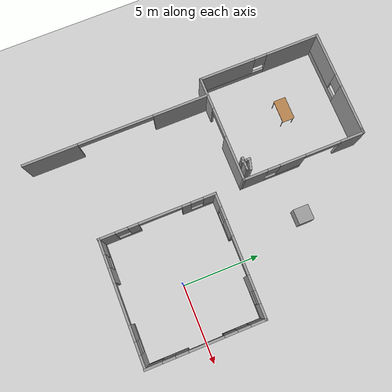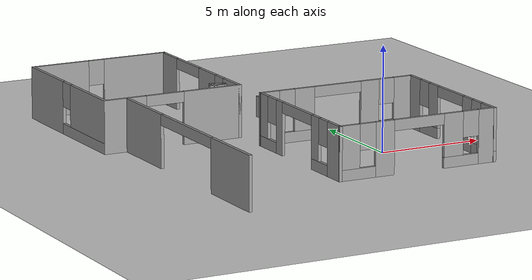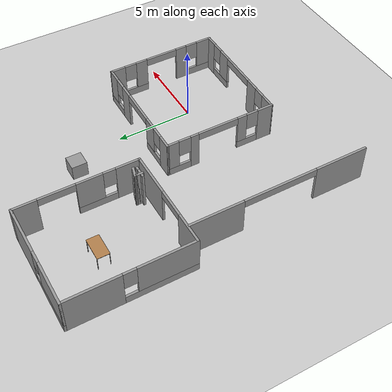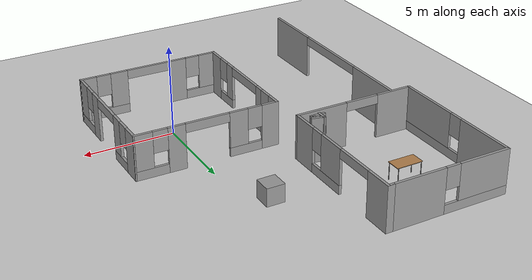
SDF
<sdf version="1.6">
 <world name="default">
  <model name="ground_plane">
   <static>1</static>
   <link name="link">
    <collision name="collision">
     <geometry><plane><normal>0 0 1</normal><size>100 100</size></plane></geometry>
     <surface>
      <contact><collide_bitmask>65535</collide_bitmask></contact>
      <friction><ode><mu>100</mu><mu2>50</mu2></ode></friction>
     </surface>
    </collision>
    <visual name="visual">
     <cast_shadows>0</cast_shadows>
     <geometry><plane><normal>0 0 1</normal><size>100 100</size></plane></geometry>
     <material>
      <script><uri>file://media/materials/scripts/gazebo.material</uri><name>Gazebo/Grey</name></script>
     </material>
    </visual>
   </link>
  </model>
  <model name="center">
   <pose>-0.31833 0.012222 0 0 -0 0</pose>
   <link name="Wall_0">
    <pose>-3.925 0.043311 0 0 -0 1.5708</pose>
    <visual name="Wall_0_Visual_0">
     <pose>-3.19646 0 1.25 0 -0 0</pose>
     <geometry><box><size>1.10708 0.15 2.5</size></box></geometry>
     <material>
      <script><uri>file://media/materials/scripts/gazebo.material</uri><name>Gazebo/Grey</name></script>
      <ambient>1 1 1 1</ambient>
     </material>
     <meta><layer>0</layer></meta>
    </visual>
    <collision name="Wall_0_Collision_0">
     <geometry><box><size>1.10708 0.15 2.5</size></box></geometry>
     <pose>-3.19646 0 1.25 0 -0 0</pose>
    </collision>
    <visual name="Wall_0_Visual_1">
     <pose>1.84852 0 1.25 0 -0 0</pose>
     <geometry><box><size>0.566695 0.15 2.5</size></box></geometry>
     <material>
      <script><uri>file://media/materials/scripts/gazebo.material</uri><name>Gazebo/Grey</name></script>
      <ambient>1 1 1 1</ambient>
     </material>
     <meta><layer>0</layer></meta>
    </visual>
    <collision name="Wall_0_Collision_1">
     <geometry><box><size>0.566695 0.15 2.5</size></box></geometry>
     <pose>1.84852 0 1.25 0 -0 0</pose>
    </collision>
    <visual name="Wall_0_Visual_2">
     <pose>-1.91585 0 0.25 0 -0 0</pose>
     <geometry><box><size>1.45415 0.15 0.5</size></box></geometry>
     <material>
      <script><uri>file://media/materials/scripts/gazebo.material</uri><name>Gazebo/Grey</name></script>
      <ambient>1 1 1 1</ambient>
     </material>
     <meta><layer>0</layer></meta>
    </visual>
    <collision name="Wall_0_Collision_2">
     <geometry><box><size>1.45415 0.15 0.5</size></box></geometry>
     <pose>-1.91585 0 0.25 0 -0 0</pose>
    </collision>
    <visual name="Wall_0_Visual_3">
     <pose>2.94093 0 0.25 0 -0 0</pose>
     <geometry><box><size>1.61813 0.15 0.5</size></box></geometry>
     <material>
      <script><uri>file://media/materials/scripts/gazebo.material</uri><name>Gazebo/Grey</name></script>
      <ambient>1 1 1 1</ambient>
     </material>
     <meta><layer>0</layer></meta>
    </visual>
    <collision name="Wall_0_Collision_3">
     <geometry><box><size>1.61813 0.15 0.5</size></box></geometry>
     <pose>2.94093 0 0.25 0 -0 0</pose>
    </collision>
    <visual name="Wall_0_Visual_4">
     <pose>-1.51585 0 1.5 0 -0 0</pose>
     <geometry><box><size>0.654145 0.15 2</size></box></geometry>
     <material>
      <script><uri>file://media/materials/scripts/gazebo.material</uri><name>Gazebo/Grey</name></script>
      <ambient>1 1 1 1</ambient>
     </material>
     <meta><layer>0</layer></meta>
    </visual>
    <collision name="Wall_0_Collision_4">
     <geometry><box><size>0.654145 0.15 2</size></box></geometry>
     <pose>-1.51585 0 1.5 0 -0 0</pose>
    </collision>
    <visual name="Wall_0_Visual_5">
     <pose>-1.51585 0 1.5 0 -0 0</pose>
     <geometry><box><size>0.654145 0.15 2</size></box></geometry>
     <material>
      <script><uri>file://media/materials/scripts/gazebo.material</uri><name>Gazebo/Grey</name></script>
      <ambient>1 1 1 1</ambient>
     </material>
     <meta><layer>0</layer></meta>
    </visual>
    <collision name="Wall_0_Collision_5">
     <geometry><box><size>0.654145 0.15 2</size></box></geometry>
     <pose>-1.51585 0 1.5 0 -0 0</pose>
    </collision>
    <visual name="Wall_0_Visual_6">
     <pose>3.34093 0 1.5 0 -0 0</pose>
     <geometry><box><size>0.818134 0.15 2</size></box></geometry>
     <material>
      <script><uri>file://media/materials/scripts/gazebo.material</uri><name>Gazebo/Grey</name></script>
      <ambient>1 1 1 1</ambient>
     </material>
     <meta><layer>0</layer></meta>
    </visual>
    <collision name="Wall_0_Collision_6">
     <geometry><box><size>0.818134 0.15 2</size></box></geometry>
     <pose>3.34093 0 1.5 0 -0 0</pose>
    </collision>
    <visual name="Wall_0_Visual_7">
     <pose>-2.24292 0 1.9 0 -0 0</pose>
     <geometry><box><size>0.8 0.15 1.2</size></box></geometry>
     <material>
      <script><uri>file://media/materials/scripts/gazebo.material</uri><name>Gazebo/Grey</name></script>
      <ambient>1 1 1 1</ambient>
     </material>
     <meta><layer>0</layer></meta>
    </visual>
    <collision name="Wall_0_Collision_7">
     <geometry><box><size>0.8 0.15 1.2</size></box></geometry>
     <pose>-2.24292 0 1.9 0 -0 0</pose>
    </collision>
    <visual name="Wall_0_Visual_8">
     <pose>2.53187 0 1.9 0 -0 0</pose>
     <geometry><box><size>0.8 0.15 1.2</size></box></geometry>
     <material>
      <script><uri>file://media/materials/scripts/gazebo.material</uri><name>Gazebo/Grey</name></script>
      <ambient>1 1 1 1</ambient>
     </material>
     <meta><layer>0</layer></meta>
    </visual>
    <collision name="Wall_0_Collision_8">
     <geometry><box><size>0.8 0.15 1.2</size></box></geometry>
     <pose>2.53187 0 1.9 0 -0 0</pose>
    </collision>
    <visual name="Wall_0_Visual_9">
     <pose>0.188198 0 2.25 0 -0 0</pose>
     <geometry><box><size>2.75395 0.15 0.5</size></box></geometry>
     <material>
      <script><uri>file://media/materials/scripts/gazebo.material</uri><name>Gazebo/Grey</name></script>
      <ambient>1 1 1 1</ambient>
     </material>
     <meta><layer>0</layer></meta>
    </visual>
    <collision name="Wall_0_Collision_9">
     <geometry><box><size>2.75395 0.15 0.5</size></box></geometry>
     <pose>0.188198 0 2.25 0 -0 0</pose>
    </collision>
    <visual name="Wall_0_Visual_10">
     <pose>0.188198 0 2.25 0 -0 0</pose>
     <geometry><box><size>2.75395 0.15 0.5</size></box></geometry>
     <material>
      <script><uri>file://media/materials/scripts/gazebo.material</uri><name>Gazebo/Grey</name></script>
      <ambient>1 1 1 1</ambient>
     </material>
     <meta><layer>0</layer></meta>
    </visual>
    <collision name="Wall_0_Collision_10">
     <geometry><box><size>2.75395 0.15 0.5</size></box></geometry>
     <pose>0.188198 0 2.25 0 -0 0</pose>
    </collision>
   </link>
   <link name="Wall_1">
    <pose>0 3.69208 0 0 -0 -0.01114</pose>
    <visual name="Wall_1_Visual_0">
     <pose>-3.51677 0 1.25 0 -0 0</pose>
     <geometry><box><size>0.966478 0.15 2.5</size></box></geometry>
     <material>
      <script><uri>file://media/materials/scripts/gazebo.material</uri><name>Gazebo/Grey</name></script>
      <ambient>1 1 1 1</ambient>
     </material>
     <meta><layer>0</layer></meta>
    </visual>
    <collision name="Wall_1_Collision_0">
     <geometry><box><size>0.966478 0.15 2.5</size></box></geometry>
     <pose>-3.51677 0 1.25 0 -0 0</pose>
    </collision>
    <visual name="Wall_1_Visual_1">
     <pose>1.70109 0 1.25 0 -0 0</pose>
     <geometry><box><size>0.951621 0.15 2.5</size></box></geometry>
     <material>
      <script><uri>file://media/materials/scripts/gazebo.material</uri><name>Gazebo/Grey</name></script>
      <ambient>1 1 1 1</ambient>
     </material>
     <meta><layer>0</layer></meta>
    </visual>
    <collision name="Wall_1_Collision_1">
     <geometry><box><size>0.951621 0.15 2.5</size></box></geometry>
     <pose>1.70109 0 1.25 0 -0 0</pose>
    </collision>
    <visual name="Wall_1_Visual_2">
     <pose>-2.11739 0 0.25 0 -0 0</pose>
     <geometry><box><size>1.8323 0.15 0.5</size></box></geometry>
     <material>
      <script><uri>file://media/materials/scripts/gazebo.material</uri><name>Gazebo/Grey</name></script>
      <ambient>1 1 1 1</ambient>
     </material>
     <meta><layer>0</layer></meta>
    </visual>
    <collision name="Wall_1_Collision_2">
     <geometry><box><size>1.8323 0.15 0.5</size></box></geometry>
     <pose>-2.11739 0 0.25 0 -0 0</pose>
    </collision>
    <visual name="Wall_1_Visual_3">
     <pose>3.08846 0 0.25 0 -0 0</pose>
     <geometry><box><size>1.8231 0.15 0.5</size></box></geometry>
     <material>
      <script><uri>file://media/materials/scripts/gazebo.material</uri><name>Gazebo/Grey</name></script>
      <ambient>1 1 1 1</ambient>
     </material>
     <meta><layer>0</layer></meta>
    </visual>
    <collision name="Wall_1_Collision_3">
     <geometry><box><size>1.8231 0.15 0.5</size></box></geometry>
     <pose>3.08846 0 0.25 0 -0 0</pose>
    </collision>
    <visual name="Wall_1_Visual_4">
     <pose>-1.71738 0 1.5 0 -0 0</pose>
     <geometry><box><size>1.03229 0.15 2</size></box></geometry>
     <material>
      <script><uri>file://media/materials/scripts/gazebo.material</uri><name>Gazebo/Grey</name></script>
      <ambient>1 1 1 1</ambient>
     </material>
     <meta><layer>0</layer></meta>
    </visual>
    <collision name="Wall_1_Collision_4">
     <geometry><box><size>1.03229 0.15 2</size></box></geometry>
     <pose>-1.71738 0 1.5 0 -0 0</pose>
    </collision>
    <visual name="Wall_1_Visual_5">
     <pose>-1.71738 0 1.5 0 -0 0</pose>
     <geometry><box><size>1.03229 0.15 2</size></box></geometry>
     <material>
      <script><uri>file://media/materials/scripts/gazebo.material</uri><name>Gazebo/Grey</name></script>
      <ambient>1 1 1 1</ambient>
     </material>
     <meta><layer>0</layer></meta>
    </visual>
    <collision name="Wall_1_Collision_5">
     <geometry><box><size>1.03229 0.15 2</size></box></geometry>
     <pose>-1.71738 0 1.5 0 -0 0</pose>
    </collision>
    <visual name="Wall_1_Visual_6">
     <pose>3.48846 0 1.5 0 -0 0</pose>
     <geometry><box><size>1.0231 0.15 2</size></box></geometry>
     <material>
      <script><uri>file://media/materials/scripts/gazebo.material</uri><name>Gazebo/Grey</name></script>
      <ambient>1 1 1 1</ambient>
     </material>
     <meta><layer>0</layer></meta>
    </visual>
    <collision name="Wall_1_Collision_6">
     <geometry><box><size>1.0231 0.15 2</size></box></geometry>
     <pose>3.48846 0 1.5 0 -0 0</pose>
    </collision>
    <visual name="Wall_1_Visual_7">
     <pose>-2.63353 0 1.9 0 -0 0</pose>
     <geometry><box><size>0.8 0.15 1.2</size></box></geometry>
     <material>
      <script><uri>file://media/materials/scripts/gazebo.material</uri><name>Gazebo/Grey</name></script>
      <ambient>1 1 1 1</ambient>
     </material>
     <meta><layer>0</layer></meta>
    </visual>
    <collision name="Wall_1_Collision_7">
     <geometry><box><size>0.8 0.15 1.2</size></box></geometry>
     <pose>-2.63353 0 1.9 0 -0 0</pose>
    </collision>
    <visual name="Wall_1_Visual_8">
     <pose>2.5769 0 1.9 0 -0 0</pose>
     <geometry><box><size>0.8 0.15 1.2</size></box></geometry>
     <material>
      <script><uri>file://media/materials/scripts/gazebo.material</uri><name>Gazebo/Grey</name></script>
      <ambient>1 1 1 1</ambient>
     </material>
     <meta><layer>0</layer></meta>
    </visual>
    <collision name="Wall_1_Collision_8">
     <geometry><box><size>0.8 0.15 1.2</size></box></geometry>
     <pose>2.5769 0 1.9 0 -0 0</pose>
    </collision>
    <visual name="Wall_1_Visual_9">
     <pose>0.012023 0 2.25 0 -0 0</pose>
     <geometry><box><size>2.42652 0.15 0.5</size></box></geometry>
     <material>
      <script><uri>file://media/materials/scripts/gazebo.material</uri><name>Gazebo/Grey</name></script>
      <ambient>1 1 1 1</ambient>
     </material>
     <meta><layer>0</layer></meta>
    </visual>
    <collision name="Wall_1_Collision_9">
     <geometry><box><size>2.42652 0.15 0.5</size></box></geometry>
     <pose>0.012023 0 2.25 0 -0 0</pose>
    </collision>
    <visual name="Wall_1_Visual_10">
     <pose>0.012023 0 2.25 0 -0 0</pose>
     <geometry><box><size>2.42652 0.15 0.5</size></box></geometry>
     <material>
      <script><uri>file://media/materials/scripts/gazebo.material</uri><name>Gazebo/Grey</name></script>
      <ambient>1 1 1 1</ambient>
     </material>
     <meta><layer>0</layer></meta>
    </visual>
    <collision name="Wall_1_Collision_10">
     <geometry><box><size>2.42652 0.15 0.5</size></box></geometry>
     <pose>0.012023 0 2.25 0 -0 0</pose>
    </collision>
   </link>
   <link name="Wall_2">
    <pose>3.925 -0.044139 0 0 -0 -1.5708</pose>
    <visual name="Wall_2_Visual_0">
     <pose>-3.25348 0 1.25 0 -0 0</pose>
     <geometry><box><size>1.02801 0.15 2.5</size></box></geometry>
     <material>
      <script><uri>file://media/materials/scripts/gazebo.material</uri><name>Gazebo/Grey</name></script>
      <ambient>1 1 1 1</ambient>
     </material>
     <meta><layer>0</layer></meta>
    </visual>
    <collision name="Wall_2_Collision_0">
     <geometry><box><size>1.02801 0.15 2.5</size></box></geometry>
     <pose>-3.25348 0 1.25 0 -0 0</pose>
    </collision>
    <visual name="Wall_2_Visual_1">
     <pose>1.45026 0 1.25 0 -0 0</pose>
     <geometry><box><size>0.785321 0.15 2.5</size></box></geometry>
     <material>
      <script><uri>file://media/materials/scripts/gazebo.material</uri><name>Gazebo/Grey</name></script>
      <ambient>1 1 1 1</ambient>
     </material>
     <meta><layer>0</layer></meta>
    </visual>
    <collision name="Wall_2_Collision_1">
     <geometry><box><size>0.785321 0.15 2.5</size></box></geometry>
     <pose>1.45026 0 1.25 0 -0 0</pose>
    </collision>
    <visual name="Wall_2_Visual_2">
     <pose>-1.93807 0 0.25 0 -0 0</pose>
     <geometry><box><size>1.60281 0.15 0.5</size></box></geometry>
     <material>
      <script><uri>file://media/materials/scripts/gazebo.material</uri><name>Gazebo/Grey</name></script>
      <ambient>1 1 1 1</ambient>
     </material>
     <meta><layer>0</layer></meta>
    </visual>
    <collision name="Wall_2_Collision_2">
     <geometry><box><size>1.60281 0.15 0.5</size></box></geometry>
     <pose>-1.93807 0 0.25 0 -0 0</pose>
    </collision>
    <visual name="Wall_2_Visual_3">
     <pose>2.80521 0 0.25 0 -0 0</pose>
     <geometry><box><size>1.92457 0.15 0.5</size></box></geometry>
     <material>
      <script><uri>file://media/materials/scripts/gazebo.material</uri><name>Gazebo/Grey</name></script>
      <ambient>1 1 1 1</ambient>
     </material>
     <meta><layer>0</layer></meta>
    </visual>
    <collision name="Wall_2_Collision_3">
     <geometry><box><size>1.92457 0.15 0.5</size></box></geometry>
     <pose>2.80521 0 0.25 0 -0 0</pose>
    </collision>
    <visual name="Wall_2_Visual_4">
     <pose>-1.53807 0 1.5 0 -0 0</pose>
     <geometry><box><size>0.802811 0.15 2</size></box></geometry>
     <material>
      <script><uri>file://media/materials/scripts/gazebo.material</uri><name>Gazebo/Grey</name></script>
      <ambient>1 1 1 1</ambient>
     </material>
     <meta><layer>0</layer></meta>
    </visual>
    <collision name="Wall_2_Collision_4">
     <geometry><box><size>0.802811 0.15 2</size></box></geometry>
     <pose>-1.53807 0 1.5 0 -0 0</pose>
    </collision>
    <visual name="Wall_2_Visual_5">
     <pose>-1.53807 0 1.5 0 -0 0</pose>
     <geometry><box><size>0.802811 0.15 2</size></box></geometry>
     <material>
      <script><uri>file://media/materials/scripts/gazebo.material</uri><name>Gazebo/Grey</name></script>
      <ambient>1 1 1 1</ambient>
     </material>
     <meta><layer>0</layer></meta>
    </visual>
    <collision name="Wall_2_Collision_5">
     <geometry><box><size>0.802811 0.15 2</size></box></geometry>
     <pose>-1.53807 0 1.5 0 -0 0</pose>
    </collision>
    <visual name="Wall_2_Visual_6">
     <pose>3.20521 0 1.5 0 -0 0</pose>
     <geometry><box><size>1.12457 0.15 2</size></box></geometry>
     <material>
      <script><uri>file://media/materials/scripts/gazebo.material</uri><name>Gazebo/Grey</name></script>
      <ambient>1 1 1 1</ambient>
     </material>
     <meta><layer>0</layer></meta>
    </visual>
    <collision name="Wall_2_Collision_6">
     <geometry><box><size>1.12457 0.15 2</size></box></geometry>
     <pose>3.20521 0 1.5 0 -0 0</pose>
    </collision>
    <visual name="Wall_2_Visual_7">
     <pose>-2.33948 0 1.9 0 -0 0</pose>
     <geometry><box><size>0.8 0.15 1.2</size></box></geometry>
     <material>
      <script><uri>file://media/materials/scripts/gazebo.material</uri><name>Gazebo/Grey</name></script>
      <ambient>1 1 1 1</ambient>
     </material>
     <meta><layer>0</layer></meta>
    </visual>
    <collision name="Wall_2_Collision_7">
     <geometry><box><size>0.8 0.15 1.2</size></box></geometry>
     <pose>-2.33948 0 1.9 0 -0 0</pose>
    </collision>
    <visual name="Wall_2_Visual_8">
     <pose>2.24292 0 1.9 0 -0 0</pose>
     <geometry><box><size>0.8 0.15 1.2</size></box></geometry>
     <material>
      <script><uri>file://media/materials/scripts/gazebo.material</uri><name>Gazebo/Grey</name></script>
      <ambient>1 1 1 1</ambient>
     </material>
     <meta><layer>0</layer></meta>
    </visual>
    <collision name="Wall_2_Collision_8">
     <geometry><box><size>0.8 0.15 1.2</size></box></geometry>
     <pose>2.24292 0 1.9 0 -0 0</pose>
    </collision>
    <visual name="Wall_2_Visual_9">
     <pose>-0.039532 0 2.25 0 -0 0</pose>
     <geometry><box><size>2.19427 0.15 0.5</size></box></geometry>
     <material>
      <script><uri>file://media/materials/scripts/gazebo.material</uri><name>Gazebo/Grey</name></script>
      <ambient>1 1 1 1</ambient>
     </material>
     <meta><layer>0</layer></meta>
    </visual>
    <collision name="Wall_2_Collision_9">
     <geometry><box><size>2.19427 0.15 0.5</size></box></geometry>
     <pose>-0.039532 0 2.25 0 -0 0</pose>
    </collision>
    <visual name="Wall_2_Visual_10">
     <pose>-0.039532 0 2.25 0 -0 0</pose>
     <geometry><box><size>2.19427 0.15 0.5</size></box></geometry>
     <material>
      <script><uri>file://media/materials/scripts/gazebo.material</uri><name>Gazebo/Grey</name></script>
      <ambient>1 1 1 1</ambient>
     </material>
     <meta><layer>0</layer></meta>
    </visual>
    <collision name="Wall_2_Collision_10">
     <geometry><box><size>2.19427 0.15 0.5</size></box></geometry>
     <pose>-0.039532 0 2.25 0 -0 0</pose>
    </collision>
   </link>
   <link name="Wall_3">
    <pose>0 -3.66667 0 0 -0 3.12823</pose>
    <visual name="Wall_3_Visual_0">
     <pose>-3.54389 0 1.25 0 -0 0</pose>
     <geometry><box><size>0.912232 0.15 2.5</size></box></geometry>
     <material>
      <script><uri>file://media/materials/scripts/gazebo.material</uri><name>Gazebo/Grey</name></script>
      <ambient>1 1 1 1</ambient>
     </material>
     <meta><layer>0</layer></meta>
    </visual>
    <collision name="Wall_3_Collision_0">
     <geometry><box><size>0.912232 0.15 2.5</size></box></geometry>
     <pose>-3.54389 0 1.25 0 -0 0</pose>
    </collision>
    <visual name="Wall_3_Visual_1">
     <pose>1.68912 0 1.25 0 -0 0</pose>
     <geometry><box><size>0.942104 0.15 2.5</size></box></geometry>
     <material>
      <script><uri>file://media/materials/scripts/gazebo.material</uri><name>Gazebo/Grey</name></script>
      <ambient>1 1 1 1</ambient>
     </material>
     <meta><layer>0</layer></meta>
    </visual>
    <collision name="Wall_3_Collision_1">
     <geometry><box><size>0.942104 0.15 2.5</size></box></geometry>
     <pose>1.68912 0 1.25 0 -0 0</pose>
    </collision>
    <visual name="Wall_3_Visual_2">
     <pose>-2.1983 0 0.25 0 -0 0</pose>
     <geometry><box><size>1.77895 0.15 0.5</size></box></geometry>
     <material>
      <script><uri>file://media/materials/scripts/gazebo.material</uri><name>Gazebo/Grey</name></script>
      <ambient>1 1 1 1</ambient>
     </material>
     <meta><layer>0</layer></meta>
    </visual>
    <collision name="Wall_3_Collision_2">
     <geometry><box><size>1.77895 0.15 0.5</size></box></geometry>
     <pose>-2.1983 0 0.25 0 -0 0</pose>
    </collision>
    <visual name="Wall_3_Visual_3">
     <pose>3.08009 0 0.25 0 -0 0</pose>
     <geometry><box><size>1.83984 0.15 0.5</size></box></geometry>
     <material>
      <script><uri>file://media/materials/scripts/gazebo.material</uri><name>Gazebo/Grey</name></script>
      <ambient>1 1 1 1</ambient>
     </material>
     <meta><layer>0</layer></meta>
    </visual>
    <collision name="Wall_3_Collision_3">
     <geometry><box><size>1.83984 0.15 0.5</size></box></geometry>
     <pose>3.08009 0 0.25 0 -0 0</pose>
    </collision>
    <visual name="Wall_3_Visual_4">
     <pose>-1.7983 0 1.5 0 -0 0</pose>
     <geometry><box><size>0.978951 0.15 2</size></box></geometry>
     <material>
      <script><uri>file://media/materials/scripts/gazebo.material</uri><name>Gazebo/Grey</name></script>
      <ambient>1 1 1 1</ambient>
     </material>
     <meta><layer>0</layer></meta>
    </visual>
    <collision name="Wall_3_Collision_4">
     <geometry><box><size>0.978951 0.15 2</size></box></geometry>
     <pose>-1.7983 0 1.5 0 -0 0</pose>
    </collision>
    <visual name="Wall_3_Visual_5">
     <pose>-1.7983 0 1.5 0 -0 0</pose>
     <geometry><box><size>0.978951 0.15 2</size></box></geometry>
     <material>
      <script><uri>file://media/materials/scripts/gazebo.material</uri><name>Gazebo/Grey</name></script>
      <ambient>1 1 1 1</ambient>
     </material>
     <meta><layer>0</layer></meta>
    </visual>
    <collision name="Wall_3_Collision_5">
     <geometry><box><size>0.978951 0.15 2</size></box></geometry>
     <pose>-1.7983 0 1.5 0 -0 0</pose>
    </collision>
    <visual name="Wall_3_Visual_6">
     <pose>3.48009 0 1.5 0 -0 0</pose>
     <geometry><box><size>1.03984 0.15 2</size></box></geometry>
     <material>
      <script><uri>file://media/materials/scripts/gazebo.material</uri><name>Gazebo/Grey</name></script>
      <ambient>1 1 1 1</ambient>
     </material>
     <meta><layer>0</layer></meta>
    </visual>
    <collision name="Wall_3_Collision_6">
     <geometry><box><size>1.03984 0.15 2</size></box></geometry>
     <pose>3.48009 0 1.5 0 -0 0</pose>
    </collision>
    <visual name="Wall_3_Visual_7">
     <pose>-2.68778 0 1.9 0 -0 0</pose>
     <geometry><box><size>0.8 0.15 1.2</size></box></geometry>
     <material>
      <script><uri>file://media/materials/scripts/gazebo.material</uri><name>Gazebo/Grey</name></script>
      <ambient>1 1 1 1</ambient>
     </material>
     <meta><layer>0</layer></meta>
    </visual>
    <collision name="Wall_3_Collision_7">
     <geometry><box><size>0.8 0.15 1.2</size></box></geometry>
     <pose>-2.68778 0 1.9 0 -0 0</pose>
    </collision>
    <visual name="Wall_3_Visual_8">
     <pose>2.56018 0 1.9 0 -0 0</pose>
     <geometry><box><size>0.8 0.15 1.2</size></box></geometry>
     <material>
      <script><uri>file://media/materials/scripts/gazebo.material</uri><name>Gazebo/Grey</name></script>
      <ambient>1 1 1 1</ambient>
     </material>
     <meta><layer>0</layer></meta>
    </visual>
    <collision name="Wall_3_Collision_8">
     <geometry><box><size>0.8 0.15 1.2</size></box></geometry>
     <pose>2.56018 0 1.9 0 -0 0</pose>
    </collision>
    <visual name="Wall_3_Visual_9">
     <pose>-0.045378 0 2.25 0 -0 0</pose>
     <geometry><box><size>2.5269 0.15 0.5</size></box></geometry>
     <material>
      <script><uri>file://media/materials/scripts/gazebo.material</uri><name>Gazebo/Grey</name></script>
      <ambient>1 1 1 1</ambient>
     </material>
     <meta><layer>0</layer></meta>
    </visual>
    <collision name="Wall_3_Collision_9">
     <geometry><box><size>2.5269 0.15 0.5</size></box></geometry>
     <pose>-0.045378 0 2.25 0 -0 0</pose>
    </collision>
    <visual name="Wall_3_Visual_10">
     <pose>-0.045378 0 2.25 0 -0 0</pose>
     <geometry><box><size>2.5269 0.15 0.5</size></box></geometry>
     <material>
      <script><uri>file://media/materials/scripts/gazebo.material</uri><name>Gazebo/Grey</name></script>
      <ambient>1 1 1 1</ambient>
     </material>
     <meta><layer>0</layer></meta>
    </visual>
    <collision name="Wall_3_Collision_10">
     <geometry><box><size>2.5269 0.15 0.5</size></box></geometry>
     <pose>-0.045378 0 2.25 0 -0 0</pose>
    </collision>
   </link>
   <static>1</static>
  </model>
  <model name="t2_1">
   <pose>-10.117 -0.381007 0 0 -0 0</pose>
   <link name="Wall_0">
    <pose>0 0 0 0 -0 1.5708</pose>
    <visual name="Wall_0_Visual_0">
     <pose>-4.21611 0 1.25 0 -0 0</pose>
     <geometry><box><size>3.56778 0.15 2.5</size></box></geometry>
     <material>
      <script><uri>file://media/materials/scripts/gazebo.material</uri><name>Gazebo/Grey</name></script>
      <ambient>1 1 1 1</ambient>
     </material>
     <meta><layer>0</layer></meta>
    </visual>
    <collision name="Wall_0_Collision_0">
     <geometry><box><size>3.56778 0.15 2.5</size></box></geometry>
     <pose>-4.21611 0 1.25 0 -0 0</pose>
    </collision>
    <visual name="Wall_0_Visual_1">
     <pose>4.22149 0 1.25 0 -0 0</pose>
     <geometry><box><size>3.55702 0.15 2.5</size></box></geometry>
     <material>
      <script><uri>file://media/materials/scripts/gazebo.material</uri><name>Gazebo/Grey</name></script>
      <ambient>1 1 1 1</ambient>
     </material>
     <meta><layer>0</layer></meta>
    </visual>
    <collision name="Wall_0_Collision_1">
     <geometry><box><size>3.55702 0.15 2.5</size></box></geometry>
     <pose>4.22149 0 1.25 0 -0 0</pose>
    </collision>
    <visual name="Wall_0_Visual_2">
     <pose>0.005377 0 2.25 0 -0 0</pose>
     <geometry><box><size>4.8752 0.15 0.5</size></box></geometry>
     <material>
      <script><uri>file://media/materials/scripts/gazebo.material</uri><name>Gazebo/Grey</name></script>
      <ambient>1 1 1 1</ambient>
     </material>
     <meta><layer>0</layer></meta>
    </visual>
    <collision name="Wall_0_Collision_2">
     <geometry><box><size>4.8752 0.15 0.5</size></box></geometry>
     <pose>0.005377 0 2.25 0 -0 0</pose>
    </collision>
   </link>
   <static>1</static>
  </model>
  <model name="so4">
   <pose>-5.23916 6.24291 0 0 -0 0</pose>
   <link name="Wall_18">
    <collision name="Wall_18_Collision">
     <geometry><box><size>0.75 0.15 2.5</size></box></geometry>
     <pose>0 0 1.25 0 -0 0</pose>
    </collision>
    <visual name="Wall_18_Visual">
     <pose>0 0 1.25 0 -0 0</pose>
     <geometry><box><size>0.75 0.15 2.5</size></box></geometry>
     <material>
      <script><uri>file://media/materials/scripts/gazebo.material</uri><name>Gazebo/Grey</name></script>
      <ambient>1 1 1 1</ambient>
     </material>
     <meta><layer>0</layer></meta>
    </visual>
    <pose>-0.098206 -0.153428 0 0 -0 0</pose>
   </link>
   <link name="Wall_19">
    <collision name="Wall_19_Collision">
     <geometry><box><size>0.25 0.15 2.5</size></box></geometry>
     <pose>0 0 1.25 0 -0 0</pose>
    </collision>
    <visual name="Wall_19_Visual">
     <pose>0 0 1.25 0 -0 0</pose>
     <geometry><box><size>0.25 0.15 2.5</size></box></geometry>
     <material>
      <script><uri>file://media/materials/scripts/gazebo.material</uri><name>Gazebo/Grey</name></script>
      <ambient>1 1 1 1</ambient>
     </material>
     <meta><layer>0</layer></meta>
    </visual>
    <pose>0.251794 -0.153428 0 0 -0 0</pose>
   </link>
   <link name="Wall_28">
    <collision name="Wall_28_Collision">
     <geometry><box><size>0.5 0.15 2.5</size></box></geometry>
     <pose>0 0 1.25 0 -0 0</pose>
    </collision>
    <visual name="Wall_28_Visual">
     <pose>0 0 1.25 0 -0 0</pose>
     <geometry><box><size>0.5 0.15 2.5</size></box></geometry>
     <material>
      <script><uri>file://media/materials/scripts/gazebo.material</uri><name>Gazebo/Grey</name></script>
      <ambient>1 1 1 1</ambient>
     </material>
     <meta><layer>0</layer></meta>
    </visual>
    <pose>-0.198206 -0.058428 0 0 -0 -1.5708</pose>
   </link>
   <link name="Wall_32">
    <collision name="Wall_32_Collision">
     <geometry><box><size>0.15 0.15 2.5</size></box></geometry>
     <pose>0 0 1.25 0 -0 0</pose>
    </collision>
    <visual name="Wall_32_Visual">
     <pose>0 0 1.25 0 -0 0</pose>
     <geometry><box><size>0.15 0.15 2.5</size></box></geometry>
     <material>
      <script><uri>file://media/materials/scripts/gazebo.material</uri><name>Gazebo/Grey</name></script>
      <ambient>1 1 1 1</ambient>
     </material>
     <meta><layer>0</layer></meta>
    </visual>
    <pose>-0.198206 0.116572 0 0 -0 0</pose>
   </link>
   <link name="Wall_33">
    <collision name="Wall_33_Collision">
     <geometry><box><size>0.15 0.15 2.5</size></box></geometry>
     <pose>0 0 1.25 0 -0 0</pose>
    </collision>
    <visual name="Wall_33_Visual">
     <pose>0 0 1.25 0 -0 0</pose>
     <geometry><box><size>0.15 0.15 2.5</size></box></geometry>
     <material>
      <script><uri>file://media/materials/scripts/gazebo.material</uri><name>Gazebo/Grey</name></script>
      <ambient>1 1 1 1</ambient>
     </material>
     <meta><layer>0</layer></meta>
    </visual>
    <pose>-0.198206 0.116572 0 0 -0 0</pose>
   </link>
   <link name="Wall_34">
    <collision name="Wall_34_Collision">
     <geometry><box><size>0.25 0.15 2.5</size></box></geometry>
     <pose>0 0 1.25 0 -0 0</pose>
    </collision>
    <visual name="Wall_34_Visual">
     <pose>0 0 1.25 0 -0 0</pose>
     <geometry><box><size>0.25 0.15 2.5</size></box></geometry>
     <material>
      <script><uri>file://media/materials/scripts/gazebo.material</uri><name>Gazebo/Grey</name></script>
      <ambient>1 1 1 1</ambient>
     </material>
     <meta><layer>0</layer></meta>
    </visual>
    <pose>-0.198206 0.166572 0 0 -0 1.5708</pose>
   </link>
   <link name="Wall_35">
    <collision name="Wall_35_Collision">
     <geometry><box><size>0.75 0.15 2.5</size></box></geometry>
     <pose>0 0 1.25 0 -0 0</pose>
    </collision>
    <visual name="Wall_35_Visual">
     <pose>0 0 1.25 0 -0 0</pose>
     <geometry><box><size>0.75 0.15 2.5</size></box></geometry>
     <material>
      <script><uri>file://media/materials/scripts/gazebo.material</uri><name>Gazebo/Grey</name></script>
      <ambient>1 1 1 1</ambient>
     </material>
     <meta><layer>0</layer></meta>
    </visual>
    <pose>0.091572 0.138926 0 0 -0 -0.261799</pose>
   </link>
   <static>1</static>
  </model>
  <model name="house3_0">
   <pose>-7.80611 9.57383 0 0 0 -1.56961</pose>
   <link name="Wall_3">
    <pose>-0 3.425 0 0 -0 3.14159</pose>
    <visual name="Wall_3_Visual_0">
     <pose>-3.18921 0 1.25 0 -0 0</pose>
     <geometry><box><size>1.62157 0.15 2.5</size></box></geometry>
     <material>
      <script><uri>file://media/materials/scripts/gazebo.material</uri><name>Gazebo/Grey</name></script>
      <ambient>1 1 1 1</ambient>
     </material>
     <meta><layer>0</layer></meta>
    </visual>
    <collision name="Wall_3_Collision_0">
     <geometry><box><size>1.62157 0.15 2.5</size></box></geometry>
     <pose>-3.18921 0 1.25 0 -0 0</pose>
    </collision>
    <visual name="Wall_3_Visual_1">
     <pose>3.20799 0 1.25 0 -0 0</pose>
     <geometry><box><size>1.58401 0.15 2.5</size></box></geometry>
     <material>
      <script><uri>file://media/materials/scripts/gazebo.material</uri><name>Gazebo/Grey</name></script>
      <ambient>1 1 1 1</ambient>
     </material>
     <meta><layer>0</layer></meta>
    </visual>
    <collision name="Wall_3_Collision_1">
     <geometry><box><size>1.58401 0.15 2.5</size></box></geometry>
     <pose>3.20799 0 1.25 0 -0 0</pose>
    </collision>
    <visual name="Wall_3_Visual_2">
     <pose>-1.13919 0 0.25 0 -0 0</pose>
     <geometry><box><size>2.47847 0.15 0.5</size></box></geometry>
     <material>
      <script><uri>file://media/materials/scripts/gazebo.material</uri><name>Gazebo/Grey</name></script>
      <ambient>1 1 1 1</ambient>
     </material>
     <meta><layer>0</layer></meta>
    </visual>
    <collision name="Wall_3_Collision_2">
     <geometry><box><size>2.47847 0.15 0.5</size></box></geometry>
     <pose>-1.13919 0 0.25 0 -0 0</pose>
    </collision>
    <visual name="Wall_3_Visual_3">
     <pose>-0.739193 0 1.5 0 -0 0</pose>
     <geometry><box><size>1.67847 0.15 2</size></box></geometry>
     <material>
      <script><uri>file://media/materials/scripts/gazebo.material</uri><name>Gazebo/Grey</name></script>
      <ambient>1 1 1 1</ambient>
     </material>
     <meta><layer>0</layer></meta>
    </visual>
    <collision name="Wall_3_Collision_3">
     <geometry><box><size>1.67847 0.15 2</size></box></geometry>
     <pose>-0.739193 0 1.5 0 -0 0</pose>
    </collision>
    <visual name="Wall_3_Visual_4">
     <pose>-1.97843 0 1.9 0 -0 0</pose>
     <geometry><box><size>0.8 0.15 1.2</size></box></geometry>
     <material>
      <script><uri>file://media/materials/scripts/gazebo.material</uri><name>Gazebo/Grey</name></script>
      <ambient>1 1 1 1</ambient>
     </material>
     <meta><layer>0</layer></meta>
    </visual>
    <collision name="Wall_3_Collision_4">
     <geometry><box><size>0.8 0.15 1.2</size></box></geometry>
     <pose>-1.97843 0 1.9 0 -0 0</pose>
    </collision>
    <visual name="Wall_3_Visual_5">
     <pose>1.25802 0 2.25 0 -0 0</pose>
     <geometry><box><size>2.31595 0.15 0.5</size></box></geometry>
     <material>
      <script><uri>file://media/materials/scripts/gazebo.material</uri><name>Gazebo/Grey</name></script>
      <ambient>1 1 1 1</ambient>
     </material>
     <meta><layer>0</layer></meta>
    </visual>
    <collision name="Wall_3_Collision_5">
     <geometry><box><size>2.31595 0.15 0.5</size></box></geometry>
     <pose>1.25802 0 2.25 0 -0 0</pose>
    </collision>
   </link>
   <link name="Wall_4">
    <collision name="Wall_4_Collision">
     <geometry><box><size>0.4 0.15 2.5</size></box></geometry>
     <pose>0 0 1.25 0 -0 0</pose>
    </collision>
    <visual name="Wall_4_Visual">
     <pose>0 0 1.25 0 -0 0</pose>
     <geometry><box><size>0.4 0.15 2.5</size></box></geometry>
     <material>
      <script><uri>file://media/materials/scripts/gazebo.material</uri><name>Gazebo/Grey</name></script>
      <ambient>1 1 1 1</ambient>
     </material>
     <meta><layer>0</layer></meta>
    </visual>
    <pose>-3.925 3.3 0 0 -0 -1.5708</pose>
   </link>
   <link name="Wall_6">
    <pose>-3.925 0 0 0 -0 -1.5708</pose>
    <visual name="Wall_6_Visual_0">
     <pose>-1.85783 0 1.25 0 -0 0</pose>
     <geometry><box><size>3.28434 0.15 2.5</size></box></geometry>
     <material>
      <script><uri>file://media/materials/scripts/gazebo.material</uri><name>Gazebo/Grey</name></script>
      <ambient>1 1 1 1</ambient>
     </material>
     <meta><layer>0</layer></meta>
    </visual>
    <collision name="Wall_6_Collision_0">
     <geometry><box><size>3.28434 0.15 2.5</size></box></geometry>
     <pose>-1.85783 0 1.25 0 -0 0</pose>
    </collision>
    <visual name="Wall_6_Visual_1">
     <pose>1.64217 0 0.25 0 -0 0</pose>
     <geometry><box><size>3.71566 0.15 0.5</size></box></geometry>
     <material>
      <script><uri>file://media/materials/scripts/gazebo.material</uri><name>Gazebo/Grey</name></script>
      <ambient>1 1 1 1</ambient>
     </material>
     <meta><layer>0</layer></meta>
    </visual>
    <collision name="Wall_6_Collision_1">
     <geometry><box><size>3.71566 0.15 0.5</size></box></geometry>
     <pose>1.64217 0 0.25 0 -0 0</pose>
    </collision>
    <visual name="Wall_6_Visual_2">
     <pose>2.04217 0 1.5 0 -0 0</pose>
     <geometry><box><size>2.91566 0.15 2</size></box></geometry>
     <material>
      <script><uri>file://media/materials/scripts/gazebo.material</uri><name>Gazebo/Grey</name></script>
      <ambient>1 1 1 1</ambient>
     </material>
     <meta><layer>0</layer></meta>
    </visual>
    <collision name="Wall_6_Collision_2">
     <geometry><box><size>2.91566 0.15 2</size></box></geometry>
     <pose>2.04217 0 1.5 0 -0 0</pose>
    </collision>
    <visual name="Wall_6_Visual_3">
     <pose>0.18434 0 1.9 0 -0 0</pose>
     <geometry><box><size>0.8 0.15 1.2</size></box></geometry>
     <material>
      <script><uri>file://media/materials/scripts/gazebo.material</uri><name>Gazebo/Grey</name></script>
      <ambient>1 1 1 1</ambient>
     </material>
     <meta><layer>0</layer></meta>
    </visual>
    <collision name="Wall_6_Collision_3">
     <geometry><box><size>0.8 0.15 1.2</size></box></geometry>
     <pose>0.18434 0 1.9 0 -0 0</pose>
    </collision>
   </link>
   <link name="Wall_7">
    <pose>-0 -3.425 0 0 -0 0</pose>
    <visual name="Wall_7_Visual_0">
     <pose>-2.2424 0 1.25 0 -0 0</pose>
     <geometry><box><size>3.51519 0.15 2.5</size></box></geometry>
     <material>
      <script><uri>file://media/materials/scripts/gazebo.material</uri><name>Gazebo/Grey</name></script>
      <ambient>1 1 1 1</ambient>
     </material>
     <meta><layer>0</layer></meta>
    </visual>
    <collision name="Wall_7_Collision_0">
     <geometry><box><size>3.51519 0.15 2.5</size></box></geometry>
     <pose>-2.2424 0 1.25 0 -0 0</pose>
    </collision>
    <visual name="Wall_7_Visual_1">
     <pose>1.7576 0 0.25 0 -0 0</pose>
     <geometry><box><size>4.4848 0.15 0.5</size></box></geometry>
     <material>
      <script><uri>file://media/materials/scripts/gazebo.material</uri><name>Gazebo/Grey</name></script>
      <ambient>1 1 1 1</ambient>
     </material>
     <meta><layer>0</layer></meta>
    </visual>
    <collision name="Wall_7_Collision_1">
     <geometry><box><size>4.4848 0.15 0.5</size></box></geometry>
     <pose>1.7576 0 0.25 0 -0 0</pose>
    </collision>
    <visual name="Wall_7_Visual_2">
     <pose>2.1576 0 1.5 0 -0 0</pose>
     <geometry><box><size>3.6848 0.15 2</size></box></geometry>
     <material>
      <script><uri>file://media/materials/scripts/gazebo.material</uri><name>Gazebo/Grey</name></script>
      <ambient>1 1 1 1</ambient>
     </material>
     <meta><layer>0</layer></meta>
    </visual>
    <collision name="Wall_7_Collision_2">
     <geometry><box><size>3.6848 0.15 2</size></box></geometry>
     <pose>2.1576 0 1.5 0 -0 0</pose>
    </collision>
    <visual name="Wall_7_Visual_3">
     <pose>-0.084805 0 1.9 0 -0 0</pose>
     <geometry><box><size>0.8 0.15 1.2</size></box></geometry>
     <material>
      <script><uri>file://media/materials/scripts/gazebo.material</uri><name>Gazebo/Grey</name></script>
      <ambient>1 1 1 1</ambient>
     </material>
     <meta><layer>0</layer></meta>
    </visual>
    <collision name="Wall_7_Collision_3">
     <geometry><box><size>0.8 0.15 1.2</size></box></geometry>
     <pose>-0.084805 0 1.9 0 -0 0</pose>
    </collision>
   </link>
   <link name="Wall_8">
    <pose>3.925 0 0 0 -0 1.5708</pose>
    <visual name="Wall_8_Visual_0">
     <pose>-2.44138 0 1.25 0 -0 0</pose>
     <geometry><box><size>2.11723 0.15 2.5</size></box></geometry>
     <material>
      <script><uri>file://media/materials/scripts/gazebo.material</uri><name>Gazebo/Grey</name></script>
      <ambient>1 1 1 1</ambient>
     </material>
     <meta><layer>0</layer></meta>
    </visual>
    <collision name="Wall_8_Collision_0">
     <geometry><box><size>2.11723 0.15 2.5</size></box></geometry>
     <pose>-2.44138 0 1.25 0 -0 0</pose>
    </collision>
    <visual name="Wall_8_Visual_1">
     <pose>2.01431 0 1.25 0 -0 0</pose>
     <geometry><box><size>2.97138 0.15 2.5</size></box></geometry>
     <material>
      <script><uri>file://media/materials/scripts/gazebo.material</uri><name>Gazebo/Grey</name></script>
      <ambient>1 1 1 1</ambient>
     </material>
     <meta><layer>0</layer></meta>
    </visual>
    <collision name="Wall_8_Collision_1">
     <geometry><box><size>2.97138 0.15 2.5</size></box></geometry>
     <pose>2.01431 0 1.25 0 -0 0</pose>
    </collision>
    <visual name="Wall_8_Visual_2">
     <pose>-0.427073 0 2.25 0 -0 0</pose>
     <geometry><box><size>1.91139 0.15 0.5</size></box></geometry>
     <material>
      <script><uri>file://media/materials/scripts/gazebo.material</uri><name>Gazebo/Grey</name></script>
      <ambient>1 1 1 1</ambient>
     </material>
     <meta><layer>0</layer></meta>
    </visual>
    <collision name="Wall_8_Collision_2">
     <geometry><box><size>1.91139 0.15 0.5</size></box></geometry>
     <pose>-0.427073 0 2.25 0 -0 0</pose>
    </collision>
   </link>
   <static>1</static>
  </model>
  <model name="table_0">
   <static>1</static>
   <link name="link">
    <collision name="surface">
     <pose>0 0 1 0 -0 0</pose>
     <geometry><box><size>1.5 0.8 0.03</size></box></geometry>
     <surface><friction><ode><mu>0.6</mu><mu2>0.6</mu2></ode></friction></surface>
    </collision>
    <visual name="visual1">
     <pose>0 0 1 0 -0 0</pose>
     <geometry><box><size>1.5 0.8 0.03</size></box></geometry>
     <material>
      <script><uri>file://media/materials/scripts/gazebo.material</uri><name>Gazebo/Wood</name></script>
     </material>
    </visual>
    <collision name="front_left_leg">
     <pose>0.68 0.38 0.5 0 -0 0</pose>
     <geometry><cylinder><radius>0.02</radius><length>1</length></cylinder></geometry>
    </collision>
    <visual name="front_left_leg">
     <pose>0.68 0.38 0.5 0 -0 0</pose>
     <geometry><cylinder><radius>0.02</radius><length>1</length></cylinder></geometry>
     <material>
      <script><uri>file://media/materials/scripts/gazebo.material</uri><name>Gazebo/Grey</name></script>
     </material>
    </visual>
    <collision name="front_right_leg">
     <pose>0.68 -0.38 0.5 0 -0 0</pose>
     <geometry><cylinder><radius>0.02</radius><length>1</length></cylinder></geometry>
    </collision>
    <visual name="front_right_leg">
     <pose>0.68 -0.38 0.5 0 -0 0</pose>
     <geometry><cylinder><radius>0.02</radius><length>1</length></cylinder></geometry>
     <material>
      <script><uri>file://media/materials/scripts/gazebo.material</uri><name>Gazebo/Grey</name></script>
     </material>
    </visual>
    <collision name="back_right_leg">
     <pose>-0.68 -0.38 0.5 0 -0 0</pose>
     <geometry><cylinder><radius>0.02</radius><length>1</length></cylinder></geometry>
    </collision>
    <visual name="back_right_leg">
     <pose>-0.68 -0.38 0.5 0 -0 0</pose>
     <geometry><cylinder><radius>0.02</radius><length>1</length></cylinder></geometry>
     <material>
      <script><uri>file://media/materials/scripts/gazebo.material</uri><name>Gazebo/Grey</name></script>
     </material>
    </visual>
    <collision name="back_left_leg">
     <pose>-0.68 0.38 0.5 0 -0 0</pose>
     <geometry><cylinder><radius>0.02</radius><length>1</length></cylinder></geometry>
    </collision>
    <visual name="back_left_leg">
     <pose>-0.68 0.38 0.5 0 -0 0</pose>
     <geometry><cylinder><radius>0.02</radius><length>1</length></cylinder></geometry>
     <material>
      <script><uri>file://media/materials/scripts/gazebo.material</uri><name>Gazebo/Grey</name></script>
     </material>
    </visual>
   </link>
   <pose>-7.91413 10.0476 0 0 -0 0</pose>
  </model>
  <model name="unit_box_1">
   <pose>-1.26315 8.46682 0.5 0 -0 0</pose>
   <link name="link">
    <inertial>
     <mass>1</mass>
     <inertia>
      <ixx>0.166667</ixx>
      <ixy>0</ixy>
      <ixz>0</ixz>
      <iyy>0.166667</iyy>
      <iyz>0</iyz>
      <izz>0.166667</izz>
     </inertia>
    </inertial>
    <collision name="collision"><geometry><box><size>1 1 1</size></box></geometry></collision>
    <visual name="visual">
     <geometry><box><size>1 1 1</size></box></geometry>
     <material>
      <script><name>Gazebo/Grey</name><uri>file://media/materials/scripts/gazebo.material</uri></script>
     </material>
    </visual>
   </link>
  </model>
 </world>
</sdf>
